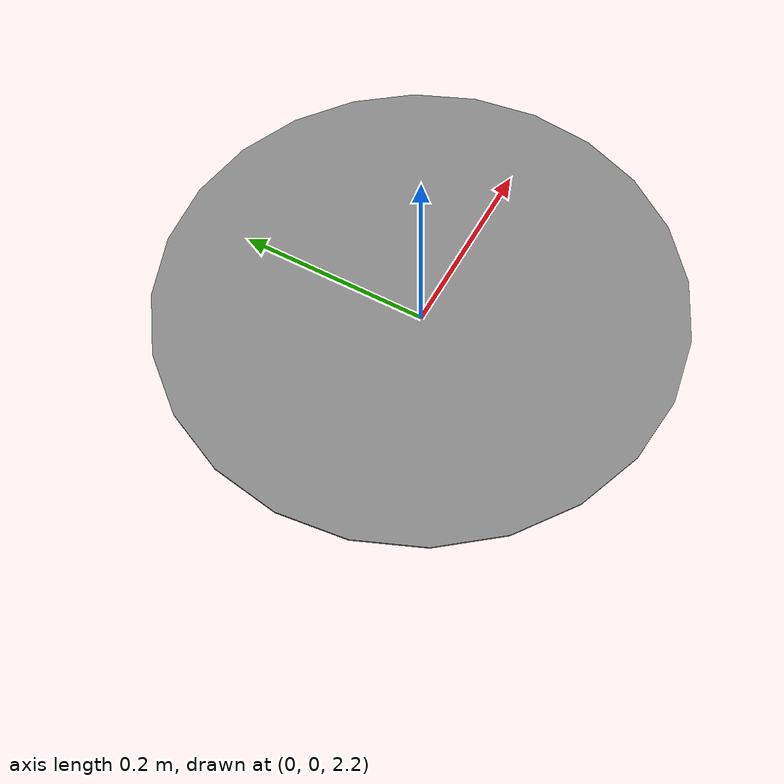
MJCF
<mujoco model="cylinder">
  <compiler angle="degree" coordinate="local" inertiafromgeom="true"/>
  <option timestep="0.01" />
  <worldbody>
    <geom conaffinity="1" condim="3" name="floor" pos="0 0 0" rgba="0.8 0.9 0.8 1" size="40 40 40" type="plane"/>
    <body name="body2" pos="0 0 0.25">
      <joint axis="1 0 0" name="free2" pos="0 0 0" type="free"/>
      <geom name="cyl" pos="0 0 2" size="0.25 0.001" type="cylinder"/>
    </body>
  </worldbody>
</mujoco>
